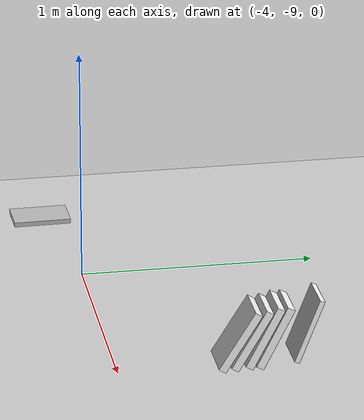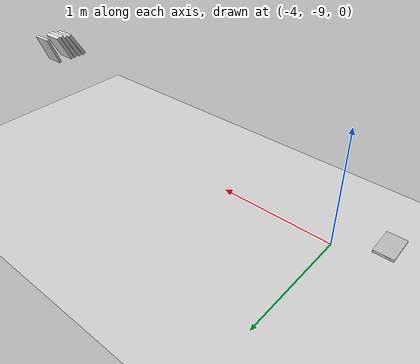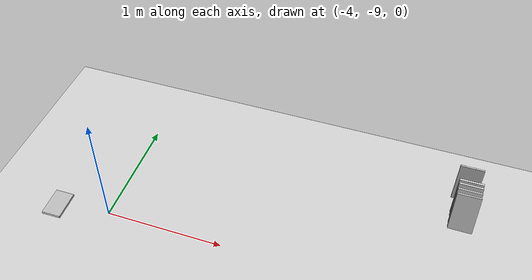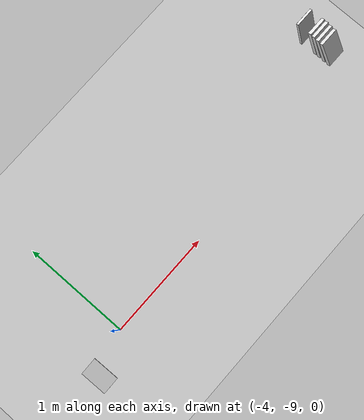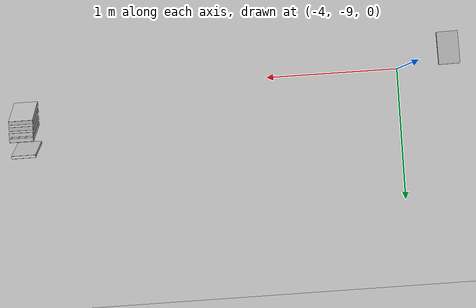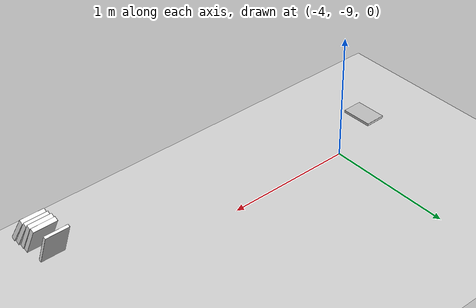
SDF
<sdf version="1.7">
 <world name="default">
  <model name="ground_plane">
   <static>1</static>
   <link name="link">
    <collision name="collision">
     <geometry><plane><normal>0 0 1</normal><size>100 100</size></plane></geometry>
     <surface><friction><ode><mu>1</mu><mu2>1</mu2></ode></friction></surface>
    </collision>
    <visual name="visual">
     <cast_shadows>0</cast_shadows>
     <geometry><plane><normal>0 0 1</normal><size>100 100</size></plane></geometry>
     <material>
      <script><uri>file://media/materials/scripts/gazebo.material</uri><name>Gazebo/Grey</name></script>
     </material>
    </visual>
    <velocity_decay><linear>0</linear><angular>0</angular></velocity_decay>
   </link>
  </model>
  <model name="book_3">
   <link name="cover">
    <pose>0 -0.000108 0.01 0 -0 0</pose>
    <visual name="visual">
     <geometry><box><size>0.245 0.16 0.02</size></box></geometry>
     <material>
      <script>
       <uri>model://book_3/materials/scripts</uri>
       <uri>model://book_3/materials/textures</uri>
       <name>book_3</name>
      </script>
     </material>
    </visual>
    <collision name="collision"><geometry><box><size>0.245 0.16 0.02</size></box></geometry></collision>
   </link>
   <link name="page">
    <pose>0 0.000608 0.01 0 -0 0</pose>
    <visual name="visual">
     <geometry><box><size>0.24502 0.15862 0.018</size></box></geometry>
     <material>
      <lighting>1</lighting>
      <ambient>1 1 1 1</ambient>
      <diffuse>1 1 1 1</diffuse>
      <specular>0.01 0.01 0.01 1</specular>
      <emissive>0 0 0 1</emissive>
      <shader type="vertex"><normal_map>__default__</normal_map></shader>
     </material>
    </visual>
    <collision name="collision"><geometry><box><size>0.245 0.16 0.018</size></box></geometry></collision>
   </link>
   <static>1</static>
   <pose>-1.34027 -8.59409 0.94392 -3.1394 -1.1994 1.56955</pose>
  </model>
  <model name="book_13">
   <link name="cover">
    <pose>0 -0.000108 0.015405 0 -0 0</pose>
    <visual name="visual">
     <geometry><box><size>0.245 0.16 0.03</size></box></geometry>
     <material>
      <script>
       <uri>model://book_13/materials/scripts</uri>
       <uri>model://book_13/materials/textures</uri>
       <name>book_13</name>
      </script>
     </material>
    </visual>
    <collision name="collision"><geometry><box><size>0.245 0.16 0.03</size></box></geometry></collision>
   </link>
   <link name="page">
    <pose>0 0.000608 0.015405 0 -0 0</pose>
    <visual name="visual">
     <geometry><box><size>0.24502 0.15862 0.028</size></box></geometry>
     <material>
      <lighting>1</lighting>
      <ambient>1 1 1 1</ambient>
      <diffuse>1 1 1 1</diffuse>
      <specular>0.01 0.01 0.01 1</specular>
      <emissive>0 0 0 1</emissive>
      <shader type="vertex"><normal_map>__default__</normal_map></shader>
     </material>
    </visual>
    <collision name="collision"><geometry><box><size>0.245 0.16 0.03</size></box></geometry></collision>
   </link>
   <static>1</static>
   <pose>-1.33006 -8.72144 0.935666 -3.13982 -1.10393 1.57001</pose>
  </model>
  <model name="book_12_0">
   <link name="cover">
    <pose>0 -0.000108 0.015405 0 -0 0</pose>
    <visual name="visual">
     <geometry><box><size>0.245 0.16 0.03</size></box></geometry>
     <material>
      <script>
       <uri>model://book_12/materials/scripts</uri>
       <uri>model://book_12/materials/textures</uri>
       <name>book_12</name>
      </script>
     </material>
    </visual>
    <collision name="collision"><geometry><box><size>0.245 0.16 0.03</size></box></geometry></collision>
   </link>
   <link name="page">
    <pose>0 0.000608 0.015405 0 -0 0</pose>
    <visual name="visual">
     <geometry><box><size>0.24502 0.15862 0.028</size></box></geometry>
     <material>
      <lighting>1</lighting>
      <ambient>1 1 1 1</ambient>
      <diffuse>1 1 1 1</diffuse>
      <specular>0.01 0.01 0.01 1</specular>
      <emissive>0 0 0 1</emissive>
      <shader type="vertex"><normal_map>__default__</normal_map></shader>
     </material>
    </visual>
    <collision name="collision"><geometry><box><size>0.245 0.16 0.03</size></box></geometry></collision>
   </link>
   <static>1</static>
   <pose>-1.33007 -8.75802 0.937574 -3.13986 -1.0924 1.57006</pose>
  </model>
  <model name="book_13_0">
   <link name="cover">
    <pose>0 -0.000108 0.015405 0 -0 0</pose>
    <visual name="visual">
     <geometry><box><size>0.245 0.16 0.03</size></box></geometry>
     <material>
      <script>
       <uri>model://book_13/materials/scripts</uri>
       <uri>model://book_13/materials/textures</uri>
       <name>book_13</name>
      </script>
     </material>
    </visual>
    <collision name="collision"><geometry><box><size>0.245 0.16 0.03</size></box></geometry></collision>
   </link>
   <link name="page">
    <pose>0 0.000608 0.015405 0 -0 0</pose>
    <visual name="visual">
     <geometry><box><size>0.24502 0.15862 0.028</size></box></geometry>
     <material>
      <lighting>1</lighting>
      <ambient>1 1 1 1</ambient>
      <diffuse>1 1 1 1</diffuse>
      <specular>0.01 0.01 0.01 1</specular>
      <emissive>0 0 0 1</emissive>
      <shader type="vertex"><normal_map>__default__</normal_map></shader>
     </material>
    </visual>
    <collision name="collision"><geometry><box><size>0.245 0.16 0.03</size></box></geometry></collision>
   </link>
   <static>1</static>
   <pose>-1.33008 -8.84522 0.930105 -3.14009 -1.01364 1.57031</pose>
  </model>
  <model name="book_14_0">
   <link name="cover">
    <pose>0 -0.000108 0.015405 0 -0 0</pose>
    <visual name="visual">
     <geometry><box><size>0.245 0.16 0.03</size></box></geometry>
     <material>
      <script>
       <uri>model://book_14/materials/scripts</uri>
       <uri>model://book_14/materials/textures</uri>
       <name>book_14</name>
      </script>
     </material>
    </visual>
    <collision name="collision"><geometry><box><size>0.245 0.16 0.03</size></box></geometry></collision>
   </link>
   <link name="page">
    <pose>0 0.000608 0.015405 0 -0 0</pose>
    <visual name="visual">
     <geometry><box><size>0.24502 0.15862 0.028</size></box></geometry>
     <material>
      <lighting>1</lighting>
      <ambient>1 1 1 1</ambient>
      <diffuse>1 1 1 1</diffuse>
      <specular>0.01 0.01 0.01 1</specular>
      <emissive>0 0 0 1</emissive>
      <shader type="vertex"><normal_map>__default__</normal_map></shader>
     </material>
    </visual>
    <collision name="collision"><geometry><box><size>0.245 0.16 0.03</size></box></geometry></collision>
   </link>
   <static>1</static>
   <pose>-1.33007 -8.8029 0.931916 -3.14002 -1.04019 1.57024</pose>
  </model>
  <model name="book_6_0">
   <link name="cover">
    <pose>0 -0.000108 0.01 0 -0 0</pose>
    <visual name="visual">
     <geometry><box><size>0.245 0.16 0.02</size></box></geometry>
     <material>
      <script>
       <uri>model://book_6/materials/scripts</uri>
       <uri>model://book_6/materials/textures</uri>
       <name>book_6</name>
      </script>
     </material>
    </visual>
    <collision name="collision"><geometry><box><size>0.245 0.16 0.02</size></box></geometry></collision>
   </link>
   <link name="page">
    <pose>0 0.000608 0.01 0 -0 0</pose>
    <visual name="visual">
     <geometry><box><size>0.24502 0.15862 0.018</size></box></geometry>
     <material>
      <lighting>1</lighting>
      <ambient>1 1 1 1</ambient>
      <diffuse>1 1 1 1</diffuse>
      <specular>0.01 0.01 0.01 1</specular>
      <emissive>0 0 0 1</emissive>
      <shader type="vertex"><normal_map>__default__</normal_map></shader>
     </material>
    </visual>
    <collision name="collision"><geometry><box><size>0.245 0.16 0.018</size></box></geometry></collision>
   </link>
   <static>1</static>
   <pose>-4.37689 -9.12673 0.113948 0 -0 1.58993</pose>
  </model>
 </world>
</sdf>
